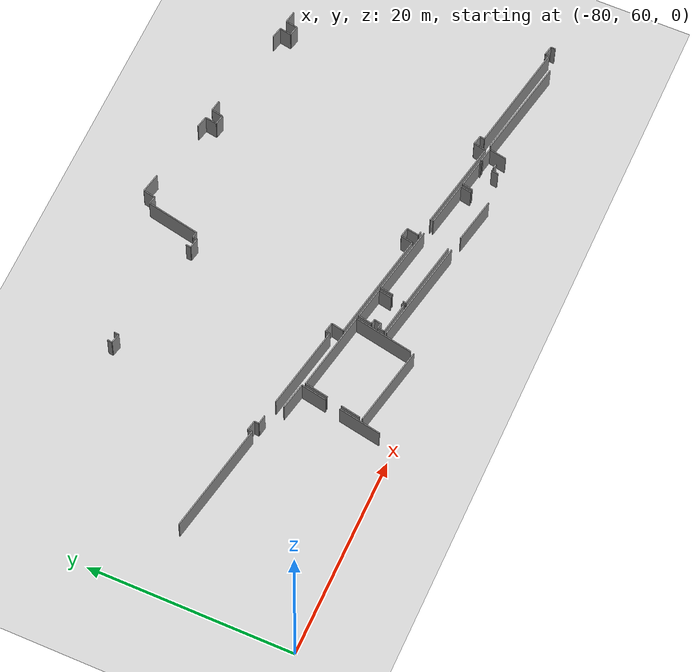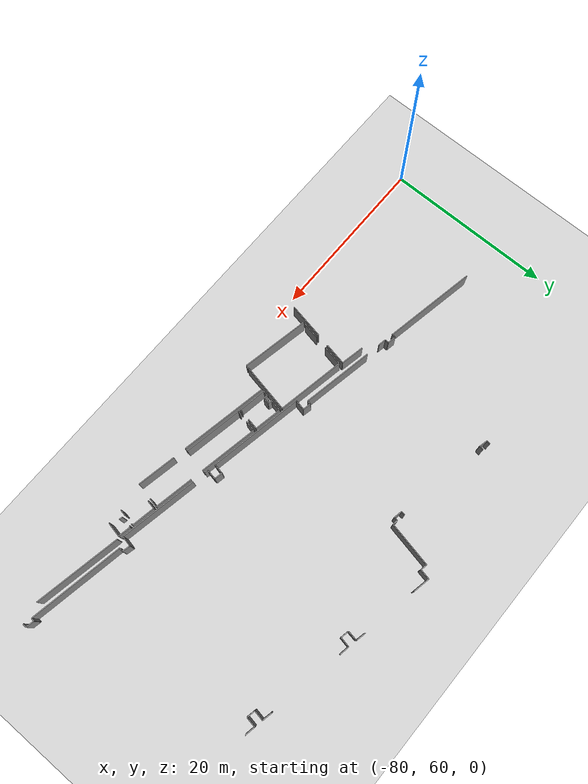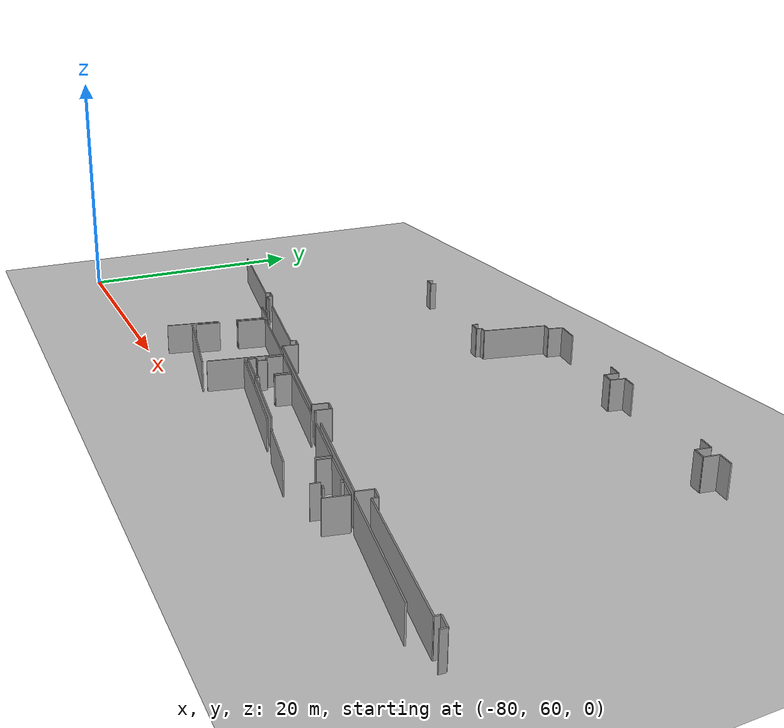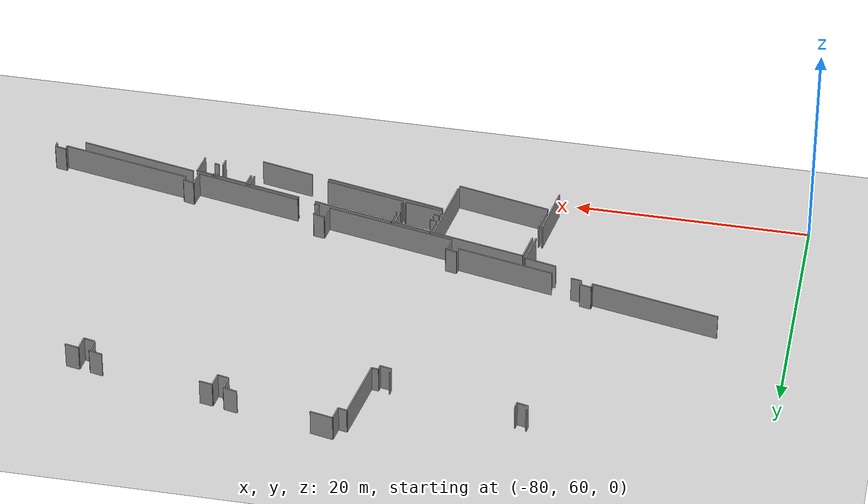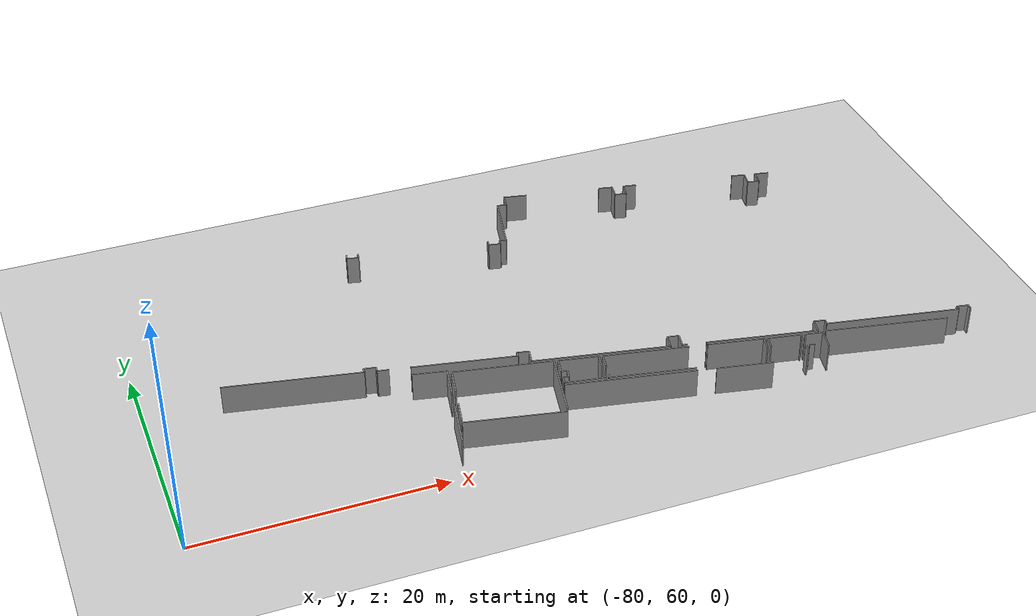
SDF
<sdf version="1.6">
 <world name="default">
  <model name="ground_plane">
   <static>1</static>
   <link name="link">
    <collision name="collision">
     <geometry><plane><normal>0 0 1</normal><size>100 100</size></plane></geometry>
     <surface><friction><ode><mu>100</mu><mu2>50</mu2></ode></friction></surface>
    </collision>
    <visual name="visual">
     <cast_shadows>0</cast_shadows>
     <geometry><plane><normal>0 0 1</normal><size>100 100</size></plane></geometry>
     <material>
      <script><uri>file://media/materials/scripts/gazebo.material</uri><name>Gazebo/Grey</name></script>
     </material>
    </visual>
   </link>
  </model>
  <model name="0510045926_A-40">
   <static>1</static>
   <link name="Wall_375">
    <collision name="Wall_375_Collision">
     <geometry><box><size>0.466538258267 0.1 2.5</size></box></geometry>
     <pose>0.233269129133 0 1.25 0 0 0</pose>
    </collision>
    <visual name="Wall_375_Visual">
     <pose>0.233269129133 0 1.25 0 0 0</pose>
     <geometry><box><size>0.466538258267 0.1 2.5</size></box></geometry>
     <material>
      <script><uri>file://media/materials/scripts/gazebo.material</uri><name>Gazebo/Grey</name></script>
      <ambient>1 1 1 1</ambient>
     </material>
    </visual>
    <pose>73.8810912345 -13.6890908283 0 0 0 -1.74855727039</pose>
   </link>
   <link name="Wall_376">
    <collision name="Wall_376_Collision">
     <geometry><box><size>0.979977868235 0.1 2.5</size></box></geometry>
     <pose>0.489988934118 0 1.25 0 0 0</pose>
    </collision>
    <visual name="Wall_376_Visual">
     <pose>0.489988934118 0 1.25 0 0 0</pose>
     <geometry><box><size>0.979977868235 0.1 2.5</size></box></geometry>
     <material>
      <script><uri>file://media/materials/scripts/gazebo.material</uri><name>Gazebo/Grey</name></script>
      <ambient>1 1 1 1</ambient>
     </material>
    </visual>
    <pose>73.7985950261 -14.1482774157 0 0 0 -0.228895606649</pose>
   </link>
   <link name="Wall_377">
    <collision name="Wall_377_Collision">
     <geometry><box><size>0.504742521886 0.1 2.5</size></box></geometry>
     <pose>0.252371260943 0 1.25 0 0 0</pose>
    </collision>
    <visual name="Wall_377_Visual">
     <pose>0.252371260943 0 1.25 0 0 0</pose>
     <geometry><box><size>0.504742521886 0.1 2.5</size></box></geometry>
     <material>
      <script><uri>file://media/materials/scripts/gazebo.material</uri><name>Gazebo/Grey</name></script>
      <ambient>1 1 1 1</ambient>
     </material>
    </visual>
    <pose>74.7530126981 -14.3706364265 0 0 0 1.41374999378</pose>
   </link>
   <link name="Wall_378">
    <collision name="Wall_378_Collision">
     <geometry><box><size>0.486185885892 0.1 2.5</size></box></geometry>
     <pose>0.243092942946 0 1.25 0 0 0</pose>
    </collision>
    <visual name="Wall_378_Visual">
     <pose>0.243092942946 0 1.25 0 0 0</pose>
     <geometry><box><size>0.486185885892 0.1 2.5</size></box></geometry>
     <material>
      <script><uri>file://media/materials/scripts/gazebo.material</uri><name>Gazebo/Grey</name></script>
      <ambient>1 1 1 1</ambient>
     </material>
    </visual>
    <pose>85.620174765 -15.9751242203 0 0 0 -1.67488076439</pose>
   </link>
   <link name="Wall_379">
    <collision name="Wall_379_Collision">
     <geometry><box><size>0.970684618987 0.1 2.5</size></box></geometry>
     <pose>0.485342309493 0 1.25 0 0 0</pose>
    </collision>
    <visual name="Wall_379_Visual">
     <pose>0.485342309493 0 1.25 0 0 0</pose>
     <geometry><box><size>0.970684618987 0.1 2.5</size></box></geometry>
     <material>
      <script><uri>file://media/materials/scripts/gazebo.material</uri><name>Gazebo/Grey</name></script>
      <ambient>1 1 1 1</ambient>
     </material>
    </visual>
    <pose>85.5696617021 -16.4586789184 0 0 0 -0.194472341344</pose>
   </link>
   <link name="Wall_380">
    <collision name="Wall_380_Collision">
     <geometry><box><size>0.436606681396 0.1 2.5</size></box></geometry>
     <pose>0.218303340698 0 1.25 0 0 0</pose>
    </collision>
    <visual name="Wall_380_Visual">
     <pose>0.218303340698 0 1.25 0 0 0</pose>
     <geometry><box><size>0.436606681396 0.1 2.5</size></box></geometry>
     <material>
      <script><uri>file://media/materials/scripts/gazebo.material</uri><name>Gazebo/Grey</name></script>
      <ambient>1 1 1 1</ambient>
     </material>
    </visual>
    <pose>86.5220486981 -16.6462626045 0 0 0 1.43843688793</pose>
   </link>
   <link name="Wall_381">
    <collision name="Wall_381_Collision">
     <geometry><box><size>0.596964804062 0.1 2.5</size></box></geometry>
     <pose>0.298482402031 0 1.25 0 0 0</pose>
    </collision>
    <visual name="Wall_381_Visual">
     <pose>0.298482402031 0 1.25 0 0 0</pose>
     <geometry><box><size>0.596964804062 0.1 2.5</size></box></geometry>
     <material>
      <script><uri>file://media/materials/scripts/gazebo.material</uri><name>Gazebo/Grey</name></script>
      <ambient>1 1 1 1</ambient>
     </material>
    </visual>
    <pose>86.5796691267 -16.2134748038 0 0 0 -0.13305730651</pose>
   </link>
   <link name="Wall_382">
    <collision name="Wall_382_Collision">
     <geometry><box><size>5.33521057322 0.1 2.5</size></box></geometry>
     <pose>2.66760528661 0 1.25 0 0 0</pose>
    </collision>
    <visual name="Wall_382_Visual">
     <pose>2.66760528661 0 1.25 0 0 0</pose>
     <geometry><box><size>5.33521057322 0.1 2.5</size></box></geometry>
     <material>
      <script><uri>file://media/materials/scripts/gazebo.material</uri><name>Gazebo/Grey</name></script>
      <ambient>1 1 1 1</ambient>
     </material>
    </visual>
    <pose>87.1713573165 -16.2926711638 0 0 0 1.37020034493</pose>
   </link>
   <link name="Wall_383">
    <collision name="Wall_383_Collision">
     <geometry><box><size>0.769302148323 0.1 2.5</size></box></geometry>
     <pose>0.384651074161 0 1.25 0 0 0</pose>
    </collision>
    <visual name="Wall_383_Visual">
     <pose>0.384651074161 0 1.25 0 0 0</pose>
     <geometry><box><size>0.769302148323 0.1 2.5</size></box></geometry>
     <material>
      <script><uri>file://media/materials/scripts/gazebo.material</uri><name>Gazebo/Grey</name></script>
      <ambient>1 1 1 1</ambient>
     </material>
    </visual>
    <pose>88.234416149 -11.0644422304 0 0 0 -0.207037401738</pose>
   </link>
   <link name="Wall_384">
    <collision name="Wall_384_Collision">
     <geometry><box><size>1.21658656731 0.1 2.5</size></box></geometry>
     <pose>0.608293283656 0 1.25 0 0 0</pose>
    </collision>
    <visual name="Wall_384_Visual">
     <pose>0.608293283656 0 1.25 0 0 0</pose>
     <geometry><box><size>1.21658656731 0.1 2.5</size></box></geometry>
     <material>
      <script><uri>file://media/materials/scripts/gazebo.material</uri><name>Gazebo/Grey</name></script>
      <ambient>1 1 1 1</ambient>
     </material>
    </visual>
    <pose>88.9872892381 -11.222581116 0 0 0 1.38125722204</pose>
   </link>
   <link name="Wall_385">
    <collision name="Wall_385_Collision">
     <geometry><box><size>1.97621525695 0.1 2.5</size></box></geometry>
     <pose>0.988107628473 0 1.25 0 0 0</pose>
    </collision>
    <visual name="Wall_385_Visual">
     <pose>0.988107628473 0 1.25 0 0 0</pose>
     <geometry><box><size>1.97621525695 0.1 2.5</size></box></geometry>
     <material>
      <script><uri>file://media/materials/scripts/gazebo.material</uri><name>Gazebo/Grey</name></script>
      <ambient>1 1 1 1</ambient>
     </material>
    </visual>
    <pose>89.21650178 -10.0277821846 0 0 0 -0.200166473208</pose>
   </link>
   <link name="Wall_386">
    <collision name="Wall_386_Collision">
     <geometry><box><size>1.19616657373 0.1 2.5</size></box></geometry>
     <pose>0.598083286865 0 1.25 0 0 0</pose>
    </collision>
    <visual name="Wall_386_Visual">
     <pose>0.598083286865 0 1.25 0 0 0</pose>
     <geometry><box><size>1.19616657373 0.1 2.5</size></box></geometry>
     <material>
      <script><uri>file://media/materials/scripts/gazebo.material</uri><name>Gazebo/Grey</name></script>
      <ambient>1 1 1 1</ambient>
     </material>
    </visual>
    <pose>97.4927752359 -11.6363313302 0 0 0 -0.216873615666</pose>
   </link>
   <link name="Wall_387">
    <collision name="Wall_387_Collision">
     <geometry><box><size>1.17986324499 0.1 2.5</size></box></geometry>
     <pose>0.589931622495 0 1.25 0 0 0</pose>
    </collision>
    <visual name="Wall_387_Visual">
     <pose>0.589931622495 0 1.25 0 0 0</pose>
     <geometry><box><size>1.17986324499 0.1 2.5</size></box></geometry>
     <material>
      <script><uri>file://media/materials/scripts/gazebo.material</uri><name>Gazebo/Grey</name></script>
      <ambient>1 1 1 1</ambient>
     </material>
    </visual>
    <pose>98.6609215461 -11.8937195002 0 0 0 -1.72915417732</pose>
   </link>
   <link name="Wall_388">
    <collision name="Wall_388_Collision">
     <geometry><box><size>0.968354615531 0.1 2.5</size></box></geometry>
     <pose>0.484177307766 0 1.25 0 0 0</pose>
    </collision>
    <visual name="Wall_388_Visual">
     <pose>0.484177307766 0 1.25 0 0 0</pose>
     <geometry><box><size>0.968354615531 0.1 2.5</size></box></geometry>
     <material>
      <script><uri>file://media/materials/scripts/gazebo.material</uri><name>Gazebo/Grey</name></script>
      <ambient>1 1 1 1</ambient>
     </material>
    </visual>
    <pose>98.474860867 -13.0588197966 0 0 0 -0.208859763769</pose>
   </link>
   <link name="Wall_389">
    <collision name="Wall_389_Collision">
     <geometry><box><size>1.18735497982 0.1 2.5</size></box></geometry>
     <pose>0.59367748991 0 1.25 0 0 0</pose>
    </collision>
    <visual name="Wall_389_Visual">
     <pose>0.59367748991 0 1.25 0 0 0</pose>
     <geometry><box><size>1.18735497982 0.1 2.5</size></box></geometry>
     <material>
      <script><uri>file://media/materials/scripts/gazebo.material</uri><name>Gazebo/Grey</name></script>
      <ambient>1 1 1 1</ambient>
     </material>
    </visual>
    <pose>99.4221711733 -13.2596028759 0 0 0 1.3848048847</pose>
   </link>
   <link name="Wall_390">
    <collision name="Wall_390_Collision">
     <geometry><box><size>1.13359483797 0.1 2.5</size></box></geometry>
     <pose>0.566797418985 0 1.25 0 0 0</pose>
    </collision>
    <visual name="Wall_390_Visual">
     <pose>0.566797418985 0 1.25 0 0 0</pose>
     <geometry><box><size>1.13359483797 0.1 2.5</size></box></geometry>
     <material>
      <script><uri>file://media/materials/scripts/gazebo.material</uri><name>Gazebo/Grey</name></script>
      <ambient>1 1 1 1</ambient>
     </material>
    </visual>
    <pose>99.6417380047 -12.0927257382 0 0 0 -0.173284265846</pose>
   </link>
   <link name="Wall_391">
    <collision name="Wall_391_Collision">
     <geometry><box><size>1.13724923992 0.1 2.5</size></box></geometry>
     <pose>0.568624619961 0 1.25 0 0 0</pose>
    </collision>
    <visual name="Wall_391_Visual">
     <pose>0.568624619961 0 1.25 0 0 0</pose>
     <geometry><box><size>1.13724923992 0.1 2.5</size></box></geometry>
     <material>
      <script><uri>file://media/materials/scripts/gazebo.material</uri><name>Gazebo/Grey</name></script>
      <ambient>1 1 1 1</ambient>
     </material>
    </visual>
    <pose>109.313847306 -13.9454636604 0 0 0 -0.216175366575</pose>
   </link>
   <link name="Wall_392">
    <collision name="Wall_392_Collision">
     <geometry><box><size>1.17248773693 0.1 2.5</size></box></geometry>
     <pose>0.586243868463 0 1.25 0 0 0</pose>
    </collision>
    <visual name="Wall_392_Visual">
     <pose>0.586243868463 0 1.25 0 0 0</pose>
     <geometry><box><size>1.17248773693 0.1 2.5</size></box></geometry>
     <material>
      <script><uri>file://media/materials/scripts/gazebo.material</uri><name>Gazebo/Grey</name></script>
      <ambient>1 1 1 1</ambient>
     </material>
    </visual>
    <pose>110.424627022 -14.1893986026 0 0 0 -1.74398868039</pose>
   </link>
   <link name="Wall_393">
    <collision name="Wall_393_Collision">
     <geometry><box><size>0.984033841671 0.1 2.5</size></box></geometry>
     <pose>0.492016920836 0 1.25 0 0 0</pose>
    </collision>
    <visual name="Wall_393_Visual">
     <pose>0.492016920836 0 1.25 0 0 0</pose>
     <geometry><box><size>0.984033841671 0.1 2.5</size></box></geometry>
     <material>
      <script><uri>file://media/materials/scripts/gazebo.material</uri><name>Gazebo/Grey</name></script>
      <ambient>1 1 1 1</ambient>
     </material>
    </visual>
    <pose>110.22257477 -15.3443455195 0 0 0 -0.215507321311</pose>
   </link>
   <link name="Wall_394">
    <collision name="Wall_394_Collision">
     <geometry><box><size>1.19095270528 0.1 2.5</size></box></geometry>
     <pose>0.595476352642 0 1.25 0 0 0</pose>
    </collision>
    <visual name="Wall_394_Visual">
     <pose>0.595476352642 0 1.25 0 0 0</pose>
     <geometry><box><size>1.19095270528 0.1 2.5</size></box></geometry>
     <material>
      <script><uri>file://media/materials/scripts/gazebo.material</uri><name>Gazebo/Grey</name></script>
      <ambient>1 1 1 1</ambient>
     </material>
    </visual>
    <pose>111.183845973 -15.5547743094 0 0 0 1.4109035665</pose>
   </link>
   <link name="Wall_395">
    <collision name="Wall_395_Collision">
     <geometry><box><size>1.1998567995 0.1 2.5</size></box></geometry>
     <pose>0.599928399752 0 1.25 0 0 0</pose>
    </collision>
    <visual name="Wall_395_Visual">
     <pose>0.599928399752 0 1.25 0 0 0</pose>
     <geometry><box><size>1.1998567995 0.1 2.5</size></box></geometry>
     <material>
      <script><uri>file://media/materials/scripts/gazebo.material</uri><name>Gazebo/Grey</name></script>
      <ambient>1 1 1 1</ambient>
     </material>
    </visual>
    <pose>111.373460335 -14.3790129646 0 0 0 -0.189844462811</pose>
   </link>
   <link name="Wall_461">
    <collision name="Wall_461_Collision">
     <geometry><box><size>0.455268198542 0.1 2.5</size></box></geometry>
     <pose>0.227634099271 0 1.25 0 0 0</pose>
    </collision>
    <visual name="Wall_461_Visual">
     <pose>0.227634099271 0 1.25 0 0 0</pose>
     <geometry><box><size>0.455268198542 0.1 2.5</size></box></geometry>
     <material>
      <script><uri>file://media/materials/scripts/gazebo.material</uri><name>Gazebo/Grey</name></script>
      <ambient>1 1 1 1</ambient>
     </material>
    </visual>
    <pose>118.898383709 -38.725801641 0 0 0 1.50775149525</pose>
   </link>
   <link name="Wall_462">
    <collision name="Wall_462_Collision">
     <geometry><box><size>0.956542689062 0.1 2.5</size></box></geometry>
     <pose>0.478271344531 0 1.25 0 0 0</pose>
    </collision>
    <visual name="Wall_462_Visual">
     <pose>0.478271344531 0 1.25 0 0 0</pose>
     <geometry><box><size>0.956542689062 0.1 2.5</size></box></geometry>
     <material>
      <script><uri>file://media/materials/scripts/gazebo.material</uri><name>Gazebo/Grey</name></script>
      <ambient>1 1 1 1</ambient>
     </material>
    </visual>
    <pose>118.927067006 -38.2714379089 0 0 0 2.94393688037</pose>
   </link>
   <link name="Wall_463">
    <collision name="Wall_463_Collision">
     <geometry><box><size>0.384223000822 0.1 2.5</size></box></geometry>
     <pose>0.192111500411 0 1.25 0 0 0</pose>
    </collision>
    <visual name="Wall_463_Visual">
     <pose>0.192111500411 0 1.25 0 0 0</pose>
     <geometry><box><size>0.384223000822 0.1 2.5</size></box></geometry>
     <material>
      <script><uri>file://media/materials/scripts/gazebo.material</uri><name>Gazebo/Grey</name></script>
      <ambient>1 1 1 1</ambient>
     </material>
    </visual>
    <pose>117.989148576 -38.0836003884 0 0 0 -1.66474587256</pose>
   </link>
   <link name="Wall_464">
    <collision name="Wall_464_Collision">
     <geometry><box><size>11.0257606764 0.1 2.5</size></box></geometry>
     <pose>5.51288033821 0 1.25 0 0 0</pose>
    </collision>
    <visual name="Wall_464_Visual">
     <pose>5.51288033821 0 1.25 0 0 0</pose>
     <geometry><box><size>11.0257606764 0.1 2.5</size></box></geometry>
     <material>
      <script><uri>file://media/materials/scripts/gazebo.material</uri><name>Gazebo/Grey</name></script>
      <ambient>1 1 1 1</ambient>
     </material>
    </visual>
    <pose>117.953104078 -38.4661289606 0 0 0 2.95664068717</pose>
   </link>
   <link name="Wall_465">
    <collision name="Wall_465_Collision">
     <geometry><box><size>0.443904558138 0.1 2.5</size></box></geometry>
     <pose>0.221952279069 0 1.25 0 0 0</pose>
    </collision>
    <visual name="Wall_465_Visual">
     <pose>0.221952279069 0 1.25 0 0 0</pose>
     <geometry><box><size>0.443904558138 0.1 2.5</size></box></geometry>
     <material>
      <script><uri>file://media/materials/scripts/gazebo.material</uri><name>Gazebo/Grey</name></script>
      <ambient>1 1 1 1</ambient>
     </material>
    </visual>
    <pose>107.115386812 -36.4384990767 0 0 0 1.4406253825</pose>
   </link>
   <link name="Wall_466">
    <collision name="Wall_466_Collision">
     <geometry><box><size>0.92918574868 0.1 2.5</size></box></geometry>
     <pose>0.46459287434 0 1.25 0 0 0</pose>
    </collision>
    <visual name="Wall_466_Visual">
     <pose>0.46459287434 0 1.25 0 0 0</pose>
     <geometry><box><size>0.92918574868 0.1 2.5</size></box></geometry>
     <material>
      <script><uri>file://media/materials/scripts/gazebo.material</uri><name>Gazebo/Grey</name></script>
      <ambient>1 1 1 1</ambient>
     </material>
    </visual>
    <pose>107.173007241 -35.9983500758 0 0 0 2.89853540862</pose>
   </link>
   <link name="Wall_467">
    <collision name="Wall_467_Collision">
     <geometry><box><size>1.24387976876 0.1 2.5</size></box></geometry>
     <pose>0.62193988438 0 1.25 0 0 0</pose>
    </collision>
    <visual name="Wall_467_Visual">
     <pose>0.62193988438 0 1.25 0 0 0</pose>
     <geometry><box><size>1.24387976876 0.1 2.5</size></box></geometry>
     <material>
      <script><uri>file://media/materials/scripts/gazebo.material</uri><name>Gazebo/Grey</name></script>
      <ambient>1 1 1 1</ambient>
     </material>
    </visual>
    <pose>106.271133308 -35.7747218926 0 0 0 -1.76943253114</pose>
   </link>
   <link name="Wall_468">
    <collision name="Wall_468_Collision">
     <geometry><box><size>9.09233940237 0.1 2.5</size></box></geometry>
     <pose>4.54616970118 0 1.25 0 0 0</pose>
    </collision>
    <visual name="Wall_468_Visual">
     <pose>4.54616970118 0 1.25 0 0 0</pose>
     <geometry><box><size>9.09233940237 0.1 2.5</size></box></geometry>
     <material>
      <script><uri>file://media/materials/scripts/gazebo.material</uri><name>Gazebo/Grey</name></script>
      <ambient>1 1 1 1</ambient>
     </material>
    </visual>
    <pose>106.025675358 -36.9941427692 0 0 0 2.95050987158</pose>
   </link>
   <link name="Wall_469">
    <collision name="Wall_469_Collision">
     <geometry><box><size>0.412261670405 0.1 2.5</size></box></geometry>
     <pose>0.206130835203 0 1.25 0 0 0</pose>
    </collision>
    <visual name="Wall_469_Visual">
     <pose>0.206130835203 0 1.25 0 0 0</pose>
     <geometry><box><size>0.412261670405 0.1 2.5</size></box></geometry>
     <material>
      <script><uri>file://media/materials/scripts/gazebo.material</uri><name>Gazebo/Grey</name></script>
      <ambient>1 1 1 1</ambient>
     </material>
    </visual>
    <pose>95.5986622923 -34.9804737821 0 0 0 2.93320852506</pose>
   </link>
   <link name="Wall_470">
    <collision name="Wall_470_Collision">
     <geometry><box><size>1.20826967683 0.1 2.5</size></box></geometry>
     <pose>0.604134838416 0 1.25 0 0 0</pose>
    </collision>
    <visual name="Wall_470_Visual">
     <pose>0.604134838416 0 1.25 0 0 0</pose>
     <geometry><box><size>1.20826967683 0.1 2.5</size></box></geometry>
     <material>
      <script><uri>file://media/materials/scripts/gazebo.material</uri><name>Gazebo/Grey</name></script>
      <ambient>1 1 1 1</ambient>
     </material>
    </visual>
    <pose>95.1953192921 -34.8951853944 0 0 0 1.38827461334</pose>
   </link>
   <link name="Wall_471">
    <collision name="Wall_471_Collision">
     <geometry><box><size>0.950340726569 0.1 2.5</size></box></geometry>
     <pose>0.475170363284 0 1.25 0 0 0</pose>
    </collision>
    <visual name="Wall_471_Visual">
     <pose>0.475170363284 0 1.25 0 0 0</pose>
     <geometry><box><size>0.950340726569 0.1 2.5</size></box></geometry>
     <material>
      <script><uri>file://media/materials/scripts/gazebo.material</uri><name>Gazebo/Grey</name></script>
      <ambient>1 1 1 1</ambient>
     </material>
    </visual>
    <pose>95.414632289 -33.7069861597 0 0 0 2.9507973122</pose>
   </link>
   <link name="Wall_472">
    <collision name="Wall_472_Collision">
     <geometry><box><size>1.21196039789 0.1 2.5</size></box></geometry>
     <pose>0.605980198943 0 1.25 0 0 0</pose>
    </collision>
    <visual name="Wall_472_Visual">
     <pose>0.605980198943 0 1.25 0 0 0</pose>
     <geometry><box><size>1.21196039789 0.1 2.5</size></box></geometry>
     <material>
      <script><uri>file://media/materials/scripts/gazebo.material</uri><name>Gazebo/Grey</name></script>
      <ambient>1 1 1 1</ambient>
     </material>
    </visual>
    <pose>94.481536714 -33.5267636737 0 0 0 -1.75595128869</pose>
   </link>
   <link name="Wall_473">
    <collision name="Wall_473_Collision">
     <geometry><box><size>11.0811408184 0.1 2.5</size></box></geometry>
     <pose>5.54057040919 0 1.25 0 0 0</pose>
    </collision>
    <visual name="Wall_473_Visual">
     <pose>5.54057040919 0 1.25 0 0 0</pose>
     <geometry><box><size>11.0811408184 0.1 2.5</size></box></geometry>
     <material>
      <script><uri>file://media/materials/scripts/gazebo.material</uri><name>Gazebo/Grey</name></script>
      <ambient>1 1 1 1</ambient>
     </material>
    </visual>
    <pose>94.2584161997 -34.7180089223 0 0 0 2.95191063987</pose>
   </link>
   <link name="Wall_474">
    <collision name="Wall_474_Collision">
     <geometry><box><size>1.25526038033 0.1 2.5</size></box></geometry>
     <pose>0.627630190165 0 1.25 0 0 0</pose>
    </collision>
    <visual name="Wall_474_Visual">
     <pose>0.627630190165 0 1.25 0 0 0</pose>
     <geometry><box><size>1.25526038033 0.1 2.5</size></box></geometry>
     <material>
      <script><uri>file://media/materials/scripts/gazebo.material</uri><name>Gazebo/Grey</name></script>
      <ambient>1 1 1 1</ambient>
     </material>
    </visual>
    <pose>83.3760240635 -32.628697258 0 0 0 1.35642635426</pose>
   </link>
   <link name="Wall_475">
    <collision name="Wall_475_Collision">
     <geometry><box><size>0.957963720881 0.1 2.5</size></box></geometry>
     <pose>0.47898186044 0 1.25 0 0 0</pose>
    </collision>
    <visual name="Wall_475_Visual">
     <pose>0.47898186044 0 1.25 0 0 0</pose>
     <geometry><box><size>0.957963720881 0.1 2.5</size></box></geometry>
     <material>
      <script><uri>file://media/materials/scripts/gazebo.material</uri><name>Gazebo/Grey</name></script>
      <ambient>1 1 1 1</ambient>
     </material>
    </visual>
    <pose>83.6430579441 -31.4021690157 0 0 0 2.93666202874</pose>
   </link>
   <link name="Wall_476">
    <collision name="Wall_476_Collision">
     <geometry><box><size>0.441657419337 0.1 2.5</size></box></geometry>
     <pose>0.220828709669 0 1.25 0 0 0</pose>
    </collision>
    <visual name="Wall_476_Visual">
     <pose>0.220828709669 0 1.25 0 0 0</pose>
     <geometry><box><size>0.441657419337 0.1 2.5</size></box></geometry>
     <material>
      <script><uri>file://media/materials/scripts/gazebo.material</uri><name>Gazebo/Grey</name></script>
      <ambient>1 1 1 1</ambient>
     </material>
    </visual>
    <pose>82.7051395138 -31.2072241295 0 0 0 -1.76864274324</pose>
   </link>
   <link name="Wall_477">
    <collision name="Wall_477_Collision">
     <geometry><box><size>8.40845304845 0.1 2.5</size></box></geometry>
     <pose>4.20422652422 0 1.25 0 0 0</pose>
    </collision>
    <visual name="Wall_477_Visual">
     <pose>4.20422652422 0 1.25 0 0 0</pose>
     <geometry><box><size>8.40845304845 0.1 2.5</size></box></geometry>
     <material>
      <script><uri>file://media/materials/scripts/gazebo.material</uri><name>Gazebo/Grey</name></script>
      <ambient>1 1 1 1</ambient>
     </material>
    </visual>
    <pose>82.6183281191 -31.6402657647 0 0 0 2.94990434827</pose>
   </link>
   <link name="Wall_478">
    <collision name="Wall_478_Collision">
     <geometry><box><size>0.912853542964 0.1 2.5</size></box></geometry>
     <pose>0.456426771482 0 1.25 0 0 0</pose>
    </collision>
    <visual name="Wall_478_Visual">
     <pose>0.456426771482 0 1.25 0 0 0</pose>
     <geometry><box><size>0.912853542964 0.1 2.5</size></box></geometry>
     <material>
      <script><uri>file://media/materials/scripts/gazebo.material</uri><name>Gazebo/Grey</name></script>
      <ambient>1 1 1 1</ambient>
     </material>
    </visual>
    <pose>72.7025377103 -29.7215308758 0 0 0 2.97255828145</pose>
   </link>
   <link name="Wall_479">
    <collision name="Wall_479_Collision">
     <geometry><box><size>0.463050392967 0.1 2.5</size></box></geometry>
     <pose>0.231525196483 0 1.25 0 0 0</pose>
    </collision>
    <visual name="Wall_479_Visual">
     <pose>0.231525196483 0 1.25 0 0 0</pose>
     <geometry><box><size>0.463050392967 0.1 2.5</size></box></geometry>
     <material>
      <script><uri>file://media/materials/scripts/gazebo.material</uri><name>Gazebo/Grey</name></script>
      <ambient>1 1 1 1</ambient>
     </material>
    </visual>
    <pose>71.8026944531 -29.567961011 0 0 0 1.47581863428</pose>
   </link>
   <link name="Wall_480">
    <collision name="Wall_480_Collision">
     <geometry><box><size>0.9834453843 0.1 2.5</size></box></geometry>
     <pose>0.49172269215 0 1.25 0 0 0</pose>
    </collision>
    <visual name="Wall_480_Visual">
     <pose>0.49172269215 0 1.25 0 0 0</pose>
     <geometry><box><size>0.9834453843 0.1 2.5</size></box></geometry>
     <material>
      <script><uri>file://media/materials/scripts/gazebo.material</uri><name>Gazebo/Grey</name></script>
      <ambient>1 1 1 1</ambient>
     </material>
    </visual>
    <pose>71.8466078194 -29.1069975822 0 0 0 2.95072699333</pose>
   </link>
   <link name="Wall_481">
    <collision name="Wall_481_Collision">
     <geometry><box><size>0.430212015498 0.1 2.5</size></box></geometry>
     <pose>0.215106007749 0 1.25 0 0 0</pose>
    </collision>
    <visual name="Wall_481_Visual">
     <pose>0.215106007749 0 1.25 0 0 0</pose>
     <geometry><box><size>0.430212015498 0.1 2.5</size></box></geometry>
     <material>
      <script><uri>file://media/materials/scripts/gazebo.material</uri><name>Gazebo/Grey</name></script>
      <ambient>1 1 1 1</ambient>
     </material>
    </visual>
    <pose>70.88102143 -28.9204292341 0 0 0 -1.67304819435</pose>
   </link>
   <link name="Wall_482">
    <collision name="Wall_482_Collision">
     <geometry><box><size>11.0364064549 0.1 2.5</size></box></geometry>
     <pose>5.51820322744 0 1.25 0 0 0</pose>
    </collision>
    <visual name="Wall_482_Visual">
     <pose>5.51820322744 0 1.25 0 0 0</pose>
     <geometry><box><size>11.0364064549 0.1 2.5</size></box></geometry>
     <material>
      <script><uri>file://media/materials/scripts/gazebo.material</uri><name>Gazebo/Grey</name></script>
      <ambient>1 1 1 1</ambient>
     </material>
    </visual>
    <pose>70.8371080637 -29.3483941796 0 0 0 2.95155398175</pose>
   </link>
   <link name="Wall_551">
    <collision name="Wall_551_Collision">
     <geometry><box><size>1.96931203111 0.1 2.5</size></box></geometry>
     <pose>0.984656015557 0 1.25 0 0 0</pose>
    </collision>
    <visual name="Wall_551_Visual">
     <pose>0.984656015557 0 1.25 0 0 0</pose>
     <geometry><box><size>1.96931203111 0.1 2.5</size></box></geometry>
     <material>
      <script><uri>file://media/materials/scripts/gazebo.material</uri><name>Gazebo/Grey</name></script>
      <ambient>1 1 1 1</ambient>
     </material>
    </visual>
    <pose>76.0120317547 -37.4728746121 0 0 0 1.37833007306</pose>
   </link>
   <link name="Wall_552">
    <collision name="Wall_552_Collision">
     <geometry><box><size>2.3533025017 0.1 2.5</size></box></geometry>
     <pose>1.17665125085 0 1.25 0 0 0</pose>
    </collision>
    <visual name="Wall_552_Visual">
     <pose>1.17665125085 0 1.25 0 0 0</pose>
     <geometry><box><size>2.3533025017 0.1 2.5</size></box></geometry>
     <material>
      <script><uri>file://media/materials/scripts/gazebo.material</uri><name>Gazebo/Grey</name></script>
      <ambient>1 1 1 1</ambient>
     </material>
    </visual>
    <pose>76.6923081805 -34.0364633241 0 0 0 1.38012769204</pose>
   </link>
   <link name="Wall_553">
    <collision name="Wall_553_Collision">
     <geometry><box><size>8.0263610077 0.1 2.5</size></box></geometry>
     <pose>4.01318050385 0 1.25 0 0 0</pose>
    </collision>
    <visual name="Wall_553_Visual">
     <pose>4.01318050385 0 1.25 0 0 0</pose>
     <geometry><box><size>8.0263610077 0.1 2.5</size></box></geometry>
     <material>
      <script><uri>file://media/materials/scripts/gazebo.material</uri><name>Gazebo/Grey</name></script>
      <ambient>1 1 1 1</ambient>
     </material>
    </visual>
    <pose>77.1382953745 -31.7258079869 0 0 0 -0.187881252525</pose>
   </link>
   <link name="Wall_554">
    <collision name="Wall_554_Collision">
     <geometry><box><size>5.89929811636 0.1 2.5</size></box></geometry>
     <pose>2.94964905818 0 1.25 0 0 0</pose>
    </collision>
    <visual name="Wall_554_Visual">
     <pose>2.94964905818 0 1.25 0 0 0</pose>
     <geometry><box><size>5.89929811636 0.1 2.5</size></box></geometry>
     <material>
      <script><uri>file://media/materials/scripts/gazebo.material</uri><name>Gazebo/Grey</name></script>
      <ambient>1 1 1 1</ambient>
     </material>
    </visual>
    <pose>85.0234098856 -33.2249544684 0 0 0 -1.76249588992</pose>
   </link>
   <link name="Wall_558">
    <collision name="Wall_558_Collision">
     <geometry><box><size>8.02520283888 0.1 2.5</size></box></geometry>
     <pose>4.01260141944 0 1.25 0 0 0</pose>
    </collision>
    <visual name="Wall_558_Visual">
     <pose>4.01260141944 0 1.25 0 0 0</pose>
     <geometry><box><size>8.02520283888 0.1 2.5</size></box></geometry>
     <material>
      <script><uri>file://media/materials/scripts/gazebo.material</uri><name>Gazebo/Grey</name></script>
      <ambient>1 1 1 1</ambient>
     </material>
    </visual>
    <pose>75.9622801952 -37.7675764518 0 0 0 -0.198028274858</pose>
   </link>
   <link name="Wall_567">
    <collision name="Wall_567_Collision">
     <geometry><box><size>2.74355400036 0.1 2.5</size></box></geometry>
     <pose>1.37177700018 0 1.25 0 0 0</pose>
    </collision>
    <visual name="Wall_567_Visual">
     <pose>1.37177700018 0 1.25 0 0 0</pose>
     <geometry><box><size>2.74355400036 0.1 2.5</size></box></geometry>
     <material>
      <script><uri>file://media/materials/scripts/gazebo.material</uri><name>Gazebo/Grey</name></script>
      <ambient>1 1 1 1</ambient>
     </material>
    </visual>
    <pose>74.17782375 -30.928767697 0 0 0 -0.204599078805</pose>
   </link>
   <link name="Wall_568">
    <collision name="Wall_568_Collision">
     <geometry><box><size>2.59932684706 0.1 2.5</size></box></geometry>
     <pose>1.29966342353 0 1.25 0 0 0</pose>
    </collision>
    <visual name="Wall_568_Visual">
     <pose>1.29966342353 0 1.25 0 0 0</pose>
     <geometry><box><size>2.59932684706 0.1 2.5</size></box></geometry>
     <material>
      <script><uri>file://media/materials/scripts/gazebo.material</uri><name>Gazebo/Grey</name></script>
      <ambient>1 1 1 1</ambient>
     </material>
    </visual>
    <pose>76.8641541283 -31.486188231 0 0 0 -1.75712208678</pose>
   </link>
   <link name="Wall_569">
    <collision name="Wall_569_Collision">
     <geometry><box><size>4.26330938736 0.1 2.5</size></box></geometry>
     <pose>2.13165469368 0 1.25 0 0 0</pose>
    </collision>
    <visual name="Wall_569_Visual">
     <pose>2.13165469368 0 1.25 0 0 0</pose>
     <geometry><box><size>4.26330938736 0.1 2.5</size></box></geometry>
     <material>
      <script><uri>file://media/materials/scripts/gazebo.material</uri><name>Gazebo/Grey</name></script>
      <ambient>1 1 1 1</ambient>
     </material>
    </visual>
    <pose>76.0785363903 -35.5345944677 0 0 0 -1.75612964691</pose>
   </link>
   <link name="Wall_935">
    <collision name="Wall_935_Collision">
     <geometry><box><size>0.675956044569 0.1 2.5</size></box></geometry>
     <pose>0.337978022284 0 1.25 0 0 0</pose>
    </collision>
    <visual name="Wall_935_Visual">
     <pose>0.337978022284 0 1.25 0 0 0</pose>
     <geometry><box><size>0.675956044569 0.1 2.5</size></box></geometry>
     <material>
      <script><uri>file://media/materials/scripts/gazebo.material</uri><name>Gazebo/Grey</name></script>
      <ambient>1 1 1 1</ambient>
     </material>
    </visual>
    <pose>84.8081582404 -36.0201798417 0 0 0 1.38268021778</pose>
   </link>
   <link name="Wall_936">
    <collision name="Wall_936_Collision">
     <geometry><box><size>0.488372869857 0.1 2.5</size></box></geometry>
     <pose>0.244186434929 0 1.25 0 0 0</pose>
    </collision>
    <visual name="Wall_936_Visual">
     <pose>0.244186434929 0 1.25 0 0 0</pose>
     <geometry><box><size>0.488372869857 0.1 2.5</size></box></geometry>
     <material>
      <script><uri>file://media/materials/scripts/gazebo.material</uri><name>Gazebo/Grey</name></script>
      <ambient>1 1 1 1</ambient>
     </material>
    </visual>
    <pose>84.9345678151 -35.3561488232 0 0 0 -0.223799129754</pose>
   </link>
   <link name="Wall_937">
    <collision name="Wall_937_Collision">
     <geometry><box><size>0.730188114657 0.1 2.5</size></box></geometry>
     <pose>0.365094057329 0 1.25 0 0 0</pose>
    </collision>
    <visual name="Wall_937_Visual">
     <pose>0.365094057329 0 1.25 0 0 0</pose>
     <geometry><box><size>0.730188114657 0.1 2.5</size></box></geometry>
     <material>
      <script><uri>file://media/materials/scripts/gazebo.material</uri><name>Gazebo/Grey</name></script>
      <ambient>1 1 1 1</ambient>
     </material>
    </visual>
    <pose>85.4107613131 -35.4645361492 0 0 0 1.36174246922</pose>
   </link>
   <link name="Wall_938">
    <collision name="Wall_938_Collision">
     <geometry><box><size>0.490841080975 0.1 2.5</size></box></geometry>
     <pose>0.245420540488 0 1.25 0 0 0</pose>
    </collision>
    <visual name="Wall_938_Visual">
     <pose>0.245420540488 0 1.25 0 0 0</pose>
     <geometry><box><size>0.490841080975 0.1 2.5</size></box></geometry>
     <material>
      <script><uri>file://media/materials/scripts/gazebo.material</uri><name>Gazebo/Grey</name></script>
      <ambient>1 1 1 1</ambient>
     </material>
    </visual>
    <pose>85.562300502 -34.7502459022 0 0 0 2.94379141425</pose>
   </link>
   <link name="Wall_939">
    <collision name="Wall_939_Collision">
     <geometry><box><size>1.37501895719 0.1 2.5</size></box></geometry>
     <pose>0.687509478596 0 1.25 0 0 0</pose>
    </collision>
    <visual name="Wall_939_Visual">
     <pose>0.687509478596 0 1.25 0 0 0</pose>
     <geometry><box><size>1.37501895719 0.1 2.5</size></box></geometry>
     <material>
      <script><uri>file://media/materials/scripts/gazebo.material</uri><name>Gazebo/Grey</name></script>
      <ambient>1 1 1 1</ambient>
     </material>
    </visual>
    <pose>85.0810303142 -34.653788797 0 0 0 1.38324838488</pose>
   </link>
   <link name="Wall_940">
    <collision name="Wall_940_Collision">
     <geometry><box><size>3.22385843911 0.1 2.5</size></box></geometry>
     <pose>1.61192921955 0 1.25 0 0 0</pose>
    </collision>
    <visual name="Wall_940_Visual">
     <pose>1.61192921955 0 1.25 0 0 0</pose>
     <geometry><box><size>3.22385843911 0.1 2.5</size></box></geometry>
     <material>
      <script><uri>file://media/materials/scripts/gazebo.material</uri><name>Gazebo/Grey</name></script>
      <ambient>1 1 1 1</ambient>
     </material>
    </visual>
    <pose>85.3374031463 -33.302881656 0 0 0 -0.192516043296</pose>
   </link>
   <link name="Wall_941">
    <collision name="Wall_941_Collision">
     <geometry><box><size>1.31509443111 0.1 2.5</size></box></geometry>
     <pose>0.657547215557 0 1.25 0 0 0</pose>
    </collision>
    <visual name="Wall_941_Visual">
     <pose>0.657547215557 0 1.25 0 0 0</pose>
     <geometry><box><size>1.31509443111 0.1 2.5</size></box></geometry>
     <material>
      <script><uri>file://media/materials/scripts/gazebo.material</uri><name>Gazebo/Grey</name></script>
      <ambient>1 1 1 1</ambient>
     </material>
    </visual>
    <pose>88.501703864 -33.91969946 0 0 0 -1.7542234596</pose>
   </link>
   <link name="Wall_942">
    <collision name="Wall_942_Collision">
     <geometry><box><size>0.238849755209 0.1 2.5</size></box></geometry>
     <pose>0.119424877605 0 1.25 0 0 0</pose>
    </collision>
    <visual name="Wall_942_Visual">
     <pose>0.119424877605 0 1.25 0 0 0</pose>
     <geometry><box><size>0.238849755209 0.1 2.5</size></box></geometry>
     <material>
      <script><uri>file://media/materials/scripts/gazebo.material</uri><name>Gazebo/Grey</name></script>
      <ambient>1 1 1 1</ambient>
     </material>
    </visual>
    <pose>88.0468324629 -36.343311144 0 0 0 -1.76652452679</pose>
   </link>
   <link name="Wall_943">
    <collision name="Wall_943_Collision">
     <geometry><box><size>3.2405249904 0.1 2.5</size></box></geometry>
     <pose>1.6202624952 0 1.25 0 0 0</pose>
    </collision>
    <visual name="Wall_943_Visual">
     <pose>1.6202624952 0 1.25 0 0 0</pose>
     <geometry><box><size>3.2405249904 0.1 2.5</size></box></geometry>
     <material>
      <script><uri>file://media/materials/scripts/gazebo.material</uri><name>Gazebo/Grey</name></script>
      <ambient>1 1 1 1</ambient>
     </material>
    </visual>
    <pose>88.0003807517 -36.5776003757 0 0 0 2.96871734892</pose>
   </link>
   <link name="Wall_945">
    <collision name="Wall_945_Collision">
     <geometry><box><size>10.4376549782 0.1 2.5</size></box></geometry>
     <pose>5.21882748911 0 1.25 0 0 0</pose>
    </collision>
    <visual name="Wall_945_Visual">
     <pose>5.21882748911 0 1.25 0 0 0</pose>
     <geometry><box><size>10.4376549782 0.1 2.5</size></box></geometry>
     <material>
      <script><uri>file://media/materials/scripts/gazebo.material</uri><name>Gazebo/Grey</name></script>
      <ambient>1 1 1 1</ambient>
     </material>
    </visual>
    <pose>84.7530761567 -36.2803601911 0 0 0 -0.191786751314</pose>
   </link>
   <link name="Wall_946">
    <collision name="Wall_946_Collision">
     <geometry><box><size>4.55840114367 0.1 2.5</size></box></geometry>
     <pose>2.27920057184 0 1.25 0 0 0</pose>
    </collision>
    <visual name="Wall_946_Visual">
     <pose>2.27920057184 0 1.25 0 0 0</pose>
     <geometry><box><size>4.55840114367 0.1 2.5</size></box></geometry>
     <material>
      <script><uri>file://media/materials/scripts/gazebo.material</uri><name>Gazebo/Grey</name></script>
      <ambient>1 1 1 1</ambient>
     </material>
    </visual>
    <pose>96.4764219491 -38.5504020104 0 0 0 -0.196663871309</pose>
   </link>
   <link name="Wall_951">
    <collision name="Wall_951_Collision">
     <geometry><box><size>6.90174611496 0.1 2.5</size></box></geometry>
     <pose>3.45087305748 0 1.25 0 0 0</pose>
    </collision>
    <visual name="Wall_951_Visual">
     <pose>3.45087305748 0 1.25 0 0 0</pose>
     <geometry><box><size>6.90174611496 0.1 2.5</size></box></geometry>
     <material>
      <script><uri>file://media/materials/scripts/gazebo.material</uri><name>Gazebo/Grey</name></script>
      <ambient>1 1 1 1</ambient>
     </material>
    </visual>
    <pose>88.8070667521 -33.9836657507 0 0 0 -0.189735472224</pose>
   </link>
   <link name="Wall_952">
    <collision name="Wall_952_Collision">
     <geometry><box><size>4.54375225439 0.1 2.5</size></box></geometry>
     <pose>2.27187612719 0 1.25 0 0 0</pose>
    </collision>
    <visual name="Wall_952_Visual">
     <pose>2.27187612719 0 1.25 0 0 0</pose>
     <geometry><box><size>4.54375225439 0.1 2.5</size></box></geometry>
     <material>
      <script><uri>file://media/materials/scripts/gazebo.material</uri><name>Gazebo/Grey</name></script>
      <ambient>1 1 1 1</ambient>
     </material>
    </visual>
    <pose>97.0785173528 -35.5655622751 0 0 0 -0.193319942037</pose>
   </link>
   <link name="Wall_953">
    <collision name="Wall_953_Collision">
     <geometry><box><size>1.10237462637 0.1 2.5</size></box></geometry>
     <pose>0.551187313186 0 1.25 0 0 0</pose>
    </collision>
    <visual name="Wall_953_Visual">
     <pose>0.551187313186 0 1.25 0 0 0</pose>
     <geometry><box><size>1.10237462637 0.1 2.5</size></box></geometry>
     <material>
      <script><uri>file://media/materials/scripts/gazebo.material</uri><name>Gazebo/Grey</name></script>
      <ambient>1 1 1 1</ambient>
     </material>
    </visual>
    <pose>101.53762779 -36.4384990767 0 0 0 -1.76168908813</pose>
   </link>
   <link name="Wall_956">
    <collision name="Wall_956_Collision">
     <geometry><box><size>6.88528584464 0.1 2.5</size></box></geometry>
     <pose>3.44264292232 0 1.25 0 0 0</pose>
    </collision>
    <visual name="Wall_956_Visual">
     <pose>3.44264292232 0 1.25 0 0 0</pose>
     <geometry><box><size>6.88528584464 0.1 2.5</size></box></geometry>
     <material>
      <script><uri>file://media/materials/scripts/gazebo.material</uri><name>Gazebo/Grey</name></script>
      <ambient>1 1 1 1</ambient>
     </material>
    </visual>
    <pose>95.0239810132 -37.9493219446 0 0 0 2.95218639645</pose>
   </link>
   <link name="Wall_957">
    <collision name="Wall_957_Collision">
     <geometry><box><size>0.318910077453 0.1 2.5</size></box></geometry>
     <pose>0.159455038727 0 1.25 0 0 0</pose>
    </collision>
    <visual name="Wall_957_Visual">
     <pose>0.159455038727 0 1.25 0 0 0</pose>
     <geometry><box><size>0.318910077453 0.1 2.5</size></box></geometry>
     <material>
      <script><uri>file://media/materials/scripts/gazebo.material</uri><name>Gazebo/Grey</name></script>
      <ambient>1 1 1 1</ambient>
     </material>
    </visual>
    <pose>88.2618302736 -36.6529892184 0 0 0 1.34686109101</pose>
   </link>
   <link name="Wall_958">
    <collision name="Wall_958_Collision">
     <geometry><box><size>1.25943292817 0.1 2.5</size></box></geometry>
     <pose>0.629716464083 0 1.25 0 0 0</pose>
    </collision>
    <visual name="Wall_958_Visual">
     <pose>0.629716464083 0 1.25 0 0 0</pose>
     <geometry><box><size>1.25943292817 0.1 2.5</size></box></geometry>
     <material>
      <script><uri>file://media/materials/scripts/gazebo.material</uri><name>Gazebo/Grey</name></script>
      <ambient>1 1 1 1</ambient>
     </material>
    </visual>
    <pose>88.5674469962 -35.220093538 0 0 0 1.37936931143</pose>
   </link>
   <link name="Wall_959">
    <collision name="Wall_959_Collision">
     <geometry><box><size>1.45540489611 0.1 2.5</size></box></geometry>
     <pose>0.727702448055 0 1.25 0 0 0</pose>
    </collision>
    <visual name="Wall_959_Visual">
     <pose>0.727702448055 0 1.25 0 0 0</pose>
     <geometry><box><size>1.45540489611 0.1 2.5</size></box></geometry>
     <material>
      <script><uri>file://media/materials/scripts/gazebo.material</uri><name>Gazebo/Grey</name></script>
      <ambient>1 1 1 1</ambient>
     </material>
    </visual>
    <pose>104.847883338 -37.0840001777 0 0 0 -0.188604953382</pose>
   </link>
   <link name="Wall_960">
    <collision name="Wall_960_Collision">
     <geometry><box><size>1.75075806653 0.1 2.5</size></box></geometry>
     <pose>0.875379033265 0 1.25 0 0 0</pose>
    </collision>
    <visual name="Wall_960_Visual">
     <pose>0.875379033265 0 1.25 0 0 0</pose>
     <geometry><box><size>1.75075806653 0.1 2.5</size></box></geometry>
     <material>
      <script><uri>file://media/materials/scripts/gazebo.material</uri><name>Gazebo/Grey</name></script>
      <ambient>1 1 1 1</ambient>
     </material>
    </visual>
    <pose>106.27747917 -37.3568722514 0 0 0 -1.77134806485</pose>
   </link>
   <link name="Wall_963">
    <collision name="Wall_963_Collision">
     <geometry><box><size>0.409403867852 0.1 2.5</size></box></geometry>
     <pose>0.204701933926 0 1.25 0 0 0</pose>
    </collision>
    <visual name="Wall_963_Visual">
     <pose>0.204701933926 0 1.25 0 0 0</pose>
     <geometry><box><size>0.409403867852 0.1 2.5</size></box></geometry>
     <material>
      <script><uri>file://media/materials/scripts/gazebo.material</uri><name>Gazebo/Grey</name></script>
      <ambient>1 1 1 1</ambient>
     </material>
    </visual>
    <pose>104.979369602 -38.5021734578 0 0 0 2.89225311585</pose>
   </link>
   <link name="Wall_964">
    <collision name="Wall_964_Collision">
     <geometry><box><size>0.173327325379 0.1 2.5</size></box></geometry>
     <pose>0.0866636626894 0 1.25 0 0 0</pose>
    </collision>
    <visual name="Wall_964_Visual">
     <pose>0.0866636626894 0 1.25 0 0 0</pose>
     <geometry><box><size>0.173327325379 0.1 2.5</size></box></geometry>
     <material>
      <script><uri>file://media/materials/scripts/gazebo.material</uri><name>Gazebo/Grey</name></script>
      <ambient>1 1 1 1</ambient>
     </material>
    </visual>
    <pose>104.790262909 -37.2474695875 0 0 0 1.23190988616</pose>
   </link>
   <link name="Wall_972">
    <collision name="Wall_972_Collision">
     <geometry><box><size>1.03845652493 0.1 2.5</size></box></geometry>
     <pose>0.519228262467 0 1.25 0 0 0</pose>
    </collision>
    <visual name="Wall_972_Visual">
     <pose>0.519228262467 0 1.25 0 0 0</pose>
     <geometry><box><size>1.03845652493 0.1 2.5</size></box></geometry>
     <material>
      <script><uri>file://media/materials/scripts/gazebo.material</uri><name>Gazebo/Grey</name></script>
      <ambient>1 1 1 1</ambient>
     </material>
    </visual>
    <pose>101.626723695 -37.5424252616 0 0 0 1.38020794847</pose>
   </link>
   <link name="Wall_973">
    <collision name="Wall_973_Collision">
     <geometry><box><size>2.77232725699 0.1 2.5</size></box></geometry>
     <pose>1.3861636285 0 1.25 0 0 0</pose>
    </collision>
    <visual name="Wall_973_Visual">
     <pose>1.3861636285 0 1.25 0 0 0</pose>
     <geometry><box><size>2.77232725699 0.1 2.5</size></box></geometry>
     <material>
      <script><uri>file://media/materials/scripts/gazebo.material</uri><name>Gazebo/Grey</name></script>
      <ambient>1 1 1 1</ambient>
     </material>
    </visual>
    <pose>101.823445422 -36.5227721264 0 0 0 -0.18220385457</pose>
   </link>
   <link name="Wall_974">
    <collision name="Wall_974_Collision">
     <geometry><box><size>0.19143664579 0.1 2.5</size></box></geometry>
     <pose>0.0957183228952 0 1.25 0 0 0</pose>
    </collision>
    <visual name="Wall_974_Visual">
     <pose>0.0957183228952 0 1.25 0 0 0</pose>
     <geometry><box><size>0.19143664579 0.1 2.5</size></box></geometry>
     <material>
      <script><uri>file://media/materials/scripts/gazebo.material</uri><name>Gazebo/Grey</name></script>
      <ambient>1 1 1 1</ambient>
     </material>
    </visual>
    <pose>104.54988165 -37.0251105766 0 0 0 -1.79680010445</pose>
   </link>
   <link name="Wall_975">
    <collision name="Wall_975_Collision">
     <geometry><box><size>0.695016486664 0.1 2.5</size></box></geometry>
     <pose>0.347508243332 0 1.25 0 0 0</pose>
    </collision>
    <visual name="Wall_975_Visual">
     <pose>0.347508243332 0 1.25 0 0 0</pose>
     <geometry><box><size>0.695016486664 0.1 2.5</size></box></geometry>
     <material>
      <script><uri>file://media/materials/scripts/gazebo.material</uri><name>Gazebo/Grey</name></script>
      <ambient>1 1 1 1</ambient>
     </material>
    </visual>
    <pose>104.265079355 -38.3579954691 0 0 0 -1.73774626314</pose>
   </link>
   <link name="Wall_982">
    <collision name="Wall_982_Collision">
     <geometry><box><size>10.0610053719 0.1 2.5</size></box></geometry>
     <pose>5.03050268596 0 1.25 0 0 0</pose>
    </collision>
    <visual name="Wall_982_Visual">
     <pose>5.03050268596 0 1.25 0 0 0</pose>
     <geometry><box><size>10.0610053719 0.1 2.5</size></box></geometry>
     <material>
      <script><uri>file://media/materials/scripts/gazebo.material</uri><name>Gazebo/Grey</name></script>
      <ambient>1 1 1 1</ambient>
     </material>
    </visual>
    <pose>106.606448665 -37.2530539462 0 0 0 -0.192759343235</pose>
   </link>
   <pose>-133.95 101.113233661 0 0 0 0</pose>
  </model>
 </world>
</sdf>
